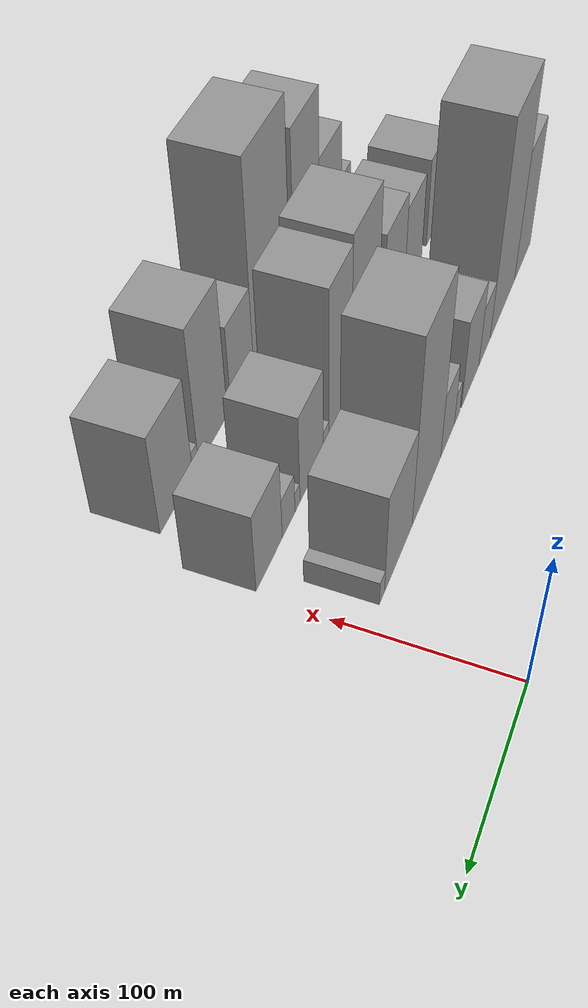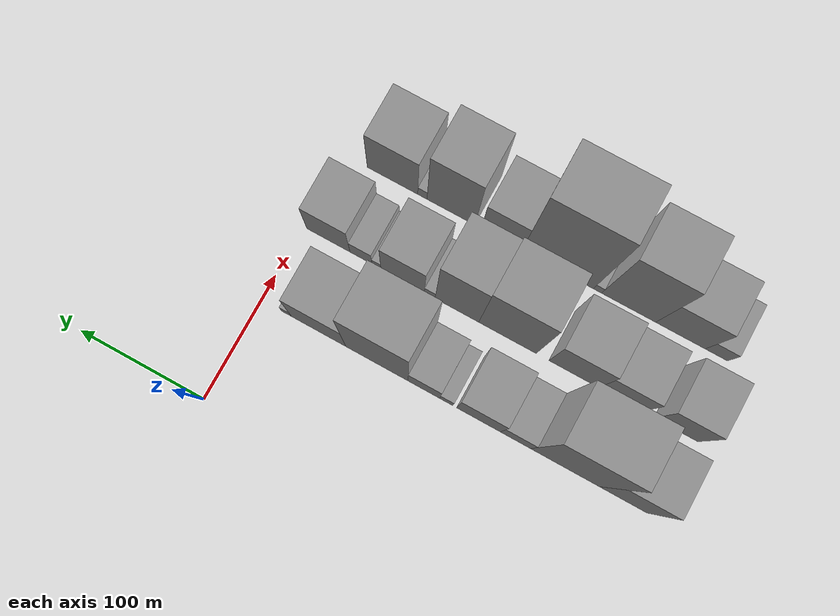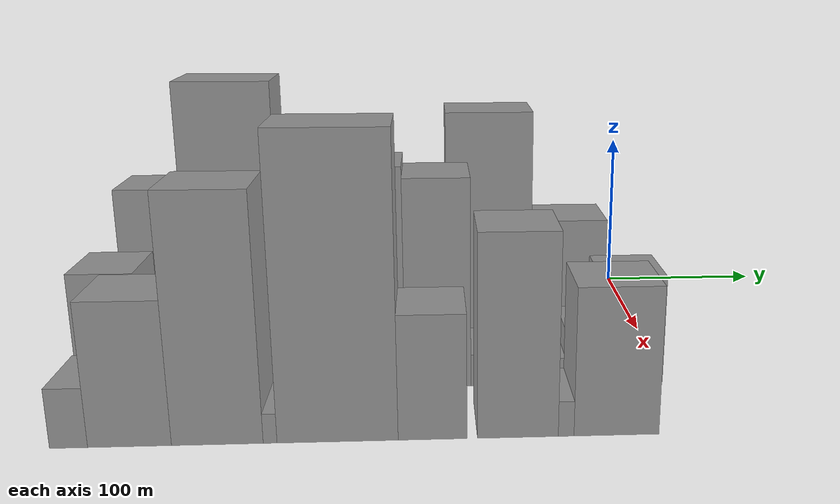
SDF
<sdf version="1.6">
 <world name="default">
  <model name="building_11">
   <static>1</static>
   <pose>100.0000 -285.9125 0 0.000000 0.000000 0.000000</pose>
   <link name="link">
    <pose>0 0 48.00 0 0 0</pose>
    <collision name="collision"><geometry><box><size>40.0000 36.7311 96.0000</size></box></geometry></collision>
    <visual name="visual">
     <cast_shadows>0</cast_shadows>
     <geometry><box><size>40.0000 36.7311 96.0000</size></box></geometry>
     <material>
      <script>
       <uri>model://grey_wall/materials/scripts</uri>
       <uri>model://grey_wall/materials/textures</uri>
       <name>vrc/grey_wall</name>
      </script>
     </material>
    </visual>
   </link>
  </model>
  <model name="building_12">
   <static>1</static>
   <pose>100.0000 -240.7987 0 0.000000 0.000000 0.000000</pose>
   <link name="link">
    <pose>0 0 78.00 0 0 0</pose>
    <collision name="collision"><geometry><box><size>40.0000 53.4963 156.0000</size></box></geometry></collision>
    <visual name="visual">
     <cast_shadows>0</cast_shadows>
     <geometry><box><size>40.0000 53.4963 156.0000</size></box></geometry>
     <material>
      <script>
       <uri>model://grey_wall/materials/scripts</uri>
       <uri>model://grey_wall/materials/textures</uri>
       <name>vrc/grey_wall</name>
      </script>
     </material>
    </visual>
   </link>
  </model>
  <model name="building_13">
   <static>1</static>
   <pose>100.0000 -202.2529 0 0.000000 0.000000 0.000000</pose>
   <link name="link">
    <pose>0 0 22.50 0 0 0</pose>
    <collision name="collision"><geometry><box><size>40.0000 23.5954 45.0000</size></box></geometry></collision>
    <visual name="visual">
     <cast_shadows>0</cast_shadows>
     <geometry><box><size>40.0000 23.5954 45.0000</size></box></geometry>
     <material>
      <script>
       <uri>model://grey_wall/materials/scripts</uri>
       <uri>model://grey_wall/materials/textures</uri>
       <name>vrc/grey_wall</name>
      </script>
     </material>
    </visual>
   </link>
  </model>
  <model name="building_14">
   <static>1</static>
   <pose>100.0000 -173.3818 0 0.000000 0.000000 0.000000</pose>
   <link name="link">
    <pose>0 0 33.00 0 0 0</pose>
    <collision name="collision"><geometry><box><size>40.0000 34.1467 66.0000</size></box></geometry></collision>
    <visual name="visual">
     <cast_shadows>0</cast_shadows>
     <geometry><box><size>40.0000 34.1467 66.0000</size></box></geometry>
     <material>
      <script>
       <uri>model://grey_wall/materials/scripts</uri>
       <uri>model://grey_wall/materials/textures</uri>
       <name>vrc/grey_wall</name>
      </script>
     </material>
    </visual>
   </link>
  </model>
  <model name="building_15">
   <static>1</static>
   <pose>100.0000 -148.1046 0 0.000000 0.000000 0.000000</pose>
   <link name="link">
    <pose>0 0 12.00 0 0 0</pose>
    <collision name="collision"><geometry><box><size>40.0000 10.4078 24.0000</size></box></geometry></collision>
    <visual name="visual">
     <cast_shadows>0</cast_shadows>
     <geometry><box><size>40.0000 10.4078 24.0000</size></box></geometry>
     <material>
      <script>
       <uri>model://grey_wall/materials/scripts</uri>
       <uri>model://grey_wall/materials/textures</uri>
       <name>vrc/grey_wall</name>
      </script>
     </material>
    </visual>
   </link>
  </model>
  <model name="building_16">
   <static>1</static>
   <pose>100.0000 -130.3756 0 0.000000 0.000000 0.000000</pose>
   <link name="link">
    <pose>0 0 24.00 0 0 0</pose>
    <collision name="collision"><geometry><box><size>40.0000 25.0502 48.0000</size></box></geometry></collision>
    <visual name="visual">
     <cast_shadows>0</cast_shadows>
     <geometry><box><size>40.0000 25.0502 48.0000</size></box></geometry>
     <material>
      <script>
       <uri>model://grey_wall/materials/scripts</uri>
       <uri>model://grey_wall/materials/textures</uri>
       <name>vrc/grey_wall</name>
      </script>
     </material>
    </visual>
   </link>
  </model>
  <model name="building_17">
   <static>1</static>
   <pose>100.0000 -93.1623 0 0.000000 0.000000 0.000000</pose>
   <link name="link">
    <pose>0 0 69.00 0 0 0</pose>
    <collision name="collision"><geometry><box><size>40.0000 49.3765 138.0000</size></box></geometry></collision>
    <visual name="visual">
     <cast_shadows>0</cast_shadows>
     <geometry><box><size>40.0000 49.3765 138.0000</size></box></geometry>
     <material>
      <script>
       <uri>model://grey_wall/materials/scripts</uri>
       <uri>model://grey_wall/materials/textures</uri>
       <name>vrc/grey_wall</name>
      </script>
     </material>
    </visual>
   </link>
  </model>
  <model name="building_18">
   <static>1</static>
   <pose>100.0000 -46.5483 0 0.000000 0.000000 0.000000</pose>
   <link name="link">
    <pose>0 0 37.50 0 0 0</pose>
    <collision name="collision"><geometry><box><size>40.0000 43.8515 75.0000</size></box></geometry></collision>
    <visual name="visual">
     <cast_shadows>0</cast_shadows>
     <geometry><box><size>40.0000 43.8515 75.0000</size></box></geometry>
     <material>
      <script>
       <uri>model://grey_wall/materials/scripts</uri>
       <uri>model://grey_wall/materials/textures</uri>
       <name>vrc/grey_wall</name>
      </script>
     </material>
    </visual>
   </link>
  </model>
  <model name="building_19">
   <static>1</static>
   <pose>100.0000 -20.6367 0 0.000000 0.000000 0.000000</pose>
   <link name="link">
    <pose>0 0 9.00 0 0 0</pose>
    <collision name="collision"><geometry><box><size>40.0000 7.9717 18.0000</size></box></geometry></collision>
    <visual name="visual">
     <cast_shadows>0</cast_shadows>
     <geometry><box><size>40.0000 7.9717 18.0000</size></box></geometry>
     <material>
      <script>
       <uri>model://grey_wall/materials/scripts</uri>
       <uri>model://grey_wall/materials/textures</uri>
       <name>vrc/grey_wall</name>
      </script>
     </material>
    </visual>
   </link>
  </model>
  <model name="building_45">
   <static>1</static>
   <pose>160.0000 -296.0275 0 0.000000 0.000000 0.000000</pose>
   <link name="link">
    <pose>0 0 33.00 0 0 0</pose>
    <collision name="collision"><geometry><box><size>40.0000 33.8556 66.0000</size></box></geometry></collision>
    <visual name="visual">
     <cast_shadows>0</cast_shadows>
     <geometry><box><size>40.0000 33.8556 66.0000</size></box></geometry>
     <material>
      <script>
       <uri>model://grey_wall/materials/scripts</uri>
       <uri>model://grey_wall/materials/textures</uri>
       <name>vrc/grey_wall</name>
      </script>
     </material>
    </visual>
   </link>
  </model>
  <model name="building_46">
   <static>1</static>
   <pose>160.0000 -252.9372 0 0.000000 0.000000 0.000000</pose>
   <link name="link">
    <pose>0 0 31.50 0 0 0</pose>
    <collision name="collision"><geometry><box><size>40.0000 34.3250 63.0000</size></box></geometry></collision>
    <visual name="visual">
     <cast_shadows>0</cast_shadows>
     <geometry><box><size>40.0000 34.3250 63.0000</size></box></geometry>
     <material>
      <script>
       <uri>model://grey_wall/materials/scripts</uri>
       <uri>model://grey_wall/materials/textures</uri>
       <name>vrc/grey_wall</name>
      </script>
     </material>
    </visual>
   </link>
  </model>
  <model name="building_47">
   <static>1</static>
   <pose>160.0000 -216.3550 0 0.000000 0.000000 0.000000</pose>
   <link name="link">
    <pose>0 0 37.50 0 0 0</pose>
    <collision name="collision"><geometry><box><size>40.0000 38.8393 75.0000</size></box></geometry></collision>
    <visual name="visual">
     <cast_shadows>0</cast_shadows>
     <geometry><box><size>40.0000 38.8393 75.0000</size></box></geometry>
     <material>
      <script>
       <uri>model://grey_wall/materials/scripts</uri>
       <uri>model://grey_wall/materials/textures</uri>
       <name>vrc/grey_wall</name>
      </script>
     </material>
    </visual>
   </link>
  </model>
  <model name="building_48">
   <static>1</static>
   <pose>160.0000 -164.1275 0 0.000000 0.000000 0.000000</pose>
   <link name="link">
    <pose>0 0 60.00 0 0 0</pose>
    <collision name="collision"><geometry><box><size>40.0000 45.6158 120.0000</size></box></geometry></collision>
    <visual name="visual">
     <cast_shadows>0</cast_shadows>
     <geometry><box><size>40.0000 45.6158 120.0000</size></box></geometry>
     <material>
      <script>
       <uri>model://grey_wall/materials/scripts</uri>
       <uri>model://grey_wall/materials/textures</uri>
       <name>vrc/grey_wall</name>
      </script>
     </material>
    </visual>
   </link>
  </model>
  <model name="building_49">
   <static>1</static>
   <pose>160.0000 -123.8702 0 0.000000 0.000000 0.000000</pose>
   <link name="link">
    <pose>0 0 57.00 0 0 0</pose>
    <collision name="collision"><geometry><box><size>40.0000 34.8988 114.0000</size></box></geometry></collision>
    <visual name="visual">
     <cast_shadows>0</cast_shadows>
     <geometry><box><size>40.0000 34.8988 114.0000</size></box></geometry>
     <material>
      <script>
       <uri>model://grey_wall/materials/scripts</uri>
       <uri>model://grey_wall/materials/textures</uri>
       <name>vrc/grey_wall</name>
      </script>
     </material>
    </visual>
   </link>
  </model>
  <model name="building_50">
   <static>1</static>
   <pose>160.0000 -102.0701 0 0.000000 0.000000 0.000000</pose>
   <link name="link">
    <pose>0 0 9.00 0 0 0</pose>
    <collision name="collision"><geometry><box><size>40.0000 8.7015 18.0000</size></box></geometry></collision>
    <visual name="visual">
     <cast_shadows>0</cast_shadows>
     <geometry><box><size>40.0000 8.7015 18.0000</size></box></geometry>
     <material>
      <script>
       <uri>model://grey_wall/materials/scripts</uri>
       <uri>model://grey_wall/materials/textures</uri>
       <name>vrc/grey_wall</name>
      </script>
     </material>
    </visual>
   </link>
  </model>
  <model name="building_51">
   <static>1</static>
   <pose>160.0000 -80.2887 0 0.000000 0.000000 0.000000</pose>
   <link name="link">
    <pose>0 0 33.00 0 0 0</pose>
    <collision name="collision"><geometry><box><size>40.0000 34.8612 66.0000</size></box></geometry></collision>
    <visual name="visual">
     <cast_shadows>0</cast_shadows>
     <geometry><box><size>40.0000 34.8612 66.0000</size></box></geometry>
     <material>
      <script>
       <uri>model://grey_wall/materials/scripts</uri>
       <uri>model://grey_wall/materials/textures</uri>
       <name>vrc/grey_wall</name>
      </script>
     </material>
    </visual>
   </link>
  </model>
  <model name="building_52">
   <static>1</static>
   <pose>160.0000 -59.2380 0 0.000000 0.000000 0.000000</pose>
   <link name="link">
    <pose>0 0 7.50 0 0 0</pose>
    <collision name="collision"><geometry><box><size>40.0000 7.2402 15.0000</size></box></geometry></collision>
    <visual name="visual">
     <cast_shadows>0</cast_shadows>
     <geometry><box><size>40.0000 7.2402 15.0000</size></box></geometry>
     <material>
      <script>
       <uri>model://grey_wall/materials/scripts</uri>
       <uri>model://grey_wall/materials/textures</uri>
       <name>vrc/grey_wall</name>
      </script>
     </material>
    </visual>
   </link>
  </model>
  <model name="building_53">
   <static>1</static>
   <pose>160.0000 -46.7216 0 0.000000 0.000000 0.000000</pose>
   <link name="link">
    <pose>0 0 15.00 0 0 0</pose>
    <collision name="collision"><geometry><box><size>40.0000 17.7927 30.0000</size></box></geometry></collision>
    <visual name="visual">
     <cast_shadows>0</cast_shadows>
     <geometry><box><size>40.0000 17.7927 30.0000</size></box></geometry>
     <material>
      <script>
       <uri>model://grey_wall/materials/scripts</uri>
       <uri>model://grey_wall/materials/textures</uri>
       <name>vrc/grey_wall</name>
      </script>
     </material>
    </visual>
   </link>
  </model>
  <model name="building_54">
   <static>1</static>
   <pose>160.0000 -20.2599 0 0.000000 0.000000 0.000000</pose>
   <link name="link">
    <pose>0 0 30.00 0 0 0</pose>
    <collision name="collision"><geometry><box><size>40.0000 35.1307 60.0000</size></box></geometry></collision>
    <visual name="visual">
     <cast_shadows>0</cast_shadows>
     <geometry><box><size>40.0000 35.1307 60.0000</size></box></geometry>
     <material>
      <script>
       <uri>model://grey_wall/materials/scripts</uri>
       <uri>model://grey_wall/materials/textures</uri>
       <name>vrc/grey_wall</name>
      </script>
     </material>
    </visual>
   </link>
  </model>
  <model name="building_83">
   <static>1</static>
   <pose>220.0000 -297.4106 0 0.000000 0.000000 0.000000</pose>
   <link name="link">
    <pose>0 0 15.00 0 0 0</pose>
    <collision name="collision"><geometry><box><size>40.0000 17.5124 30.0000</size></box></geometry></collision>
    <visual name="visual">
     <cast_shadows>0</cast_shadows>
     <geometry><box><size>40.0000 17.5124 30.0000</size></box></geometry>
     <material>
      <script>
       <uri>model://grey_wall/materials/scripts</uri>
       <uri>model://grey_wall/materials/textures</uri>
       <name>vrc/grey_wall</name>
      </script>
     </material>
    </visual>
   </link>
  </model>
  <model name="building_84">
   <static>1</static>
   <pose>220.0000 -269.2744 0 0.000000 0.000000 0.000000</pose>
   <link name="link">
    <pose>0 0 36.00 0 0 0</pose>
    <collision name="collision"><geometry><box><size>40.0000 38.7601 72.0000</size></box></geometry></collision>
    <visual name="visual">
     <cast_shadows>0</cast_shadows>
     <geometry><box><size>40.0000 38.7601 72.0000</size></box></geometry>
     <material>
      <script>
       <uri>model://grey_wall/materials/scripts</uri>
       <uri>model://grey_wall/materials/textures</uri>
       <name>vrc/grey_wall</name>
      </script>
     </material>
    </visual>
   </link>
  </model>
  <model name="building_85">
   <static>1</static>
   <pose>220.0000 -228.5268 0 0.000000 0.000000 0.000000</pose>
   <link name="link">
    <pose>0 0 61.50 0 0 0</pose>
    <collision name="collision"><geometry><box><size>40.0000 42.7351 123.0000</size></box></geometry></collision>
    <visual name="visual">
     <cast_shadows>0</cast_shadows>
     <geometry><box><size>40.0000 42.7351 123.0000</size></box></geometry>
     <material>
      <script>
       <uri>model://grey_wall/materials/scripts</uri>
       <uri>model://grey_wall/materials/textures</uri>
       <name>vrc/grey_wall</name>
      </script>
     </material>
    </visual>
   </link>
  </model>
  <model name="building_86">
   <static>1</static>
   <pose>220.0000 -203.9222 0 0.000000 0.000000 0.000000</pose>
   <link name="link">
    <pose>0 0 7.50 0 0 0</pose>
    <collision name="collision"><geometry><box><size>40.0000 6.4741 15.0000</size></box></geometry></collision>
    <visual name="visual">
     <cast_shadows>0</cast_shadows>
     <geometry><box><size>40.0000 6.4741 15.0000</size></box></geometry>
     <material>
      <script>
       <uri>model://grey_wall/materials/scripts</uri>
       <uri>model://grey_wall/materials/textures</uri>
       <name>vrc/grey_wall</name>
      </script>
     </material>
    </visual>
   </link>
  </model>
  <model name="building_87">
   <static>1</static>
   <pose>220.0000 -172.1167 0 0.000000 0.000000 0.000000</pose>
   <link name="link">
    <pose>0 0 75.00 0 0 0</pose>
    <collision name="collision"><geometry><box><size>40.0000 57.1369 150.0000</size></box></geometry></collision>
    <visual name="visual">
     <cast_shadows>0</cast_shadows>
     <geometry><box><size>40.0000 57.1369 150.0000</size></box></geometry>
     <material>
      <script>
       <uri>model://grey_wall/materials/scripts</uri>
       <uri>model://grey_wall/materials/textures</uri>
       <name>vrc/grey_wall</name>
      </script>
     </material>
    </visual>
   </link>
  </model>
  <model name="building_88">
   <static>1</static>
   <pose>220.0000 -127.1598 0 0.000000 0.000000 0.000000</pose>
   <link name="link">
    <pose>0 0 31.50 0 0 0</pose>
    <collision name="collision"><geometry><box><size>40.0000 32.7769 63.0000</size></box></geometry></collision>
    <visual name="visual">
     <cast_shadows>0</cast_shadows>
     <geometry><box><size>40.0000 32.7769 63.0000</size></box></geometry>
     <material>
      <script>
       <uri>model://grey_wall/materials/scripts</uri>
       <uri>model://grey_wall/materials/textures</uri>
       <name>vrc/grey_wall</name>
      </script>
     </material>
    </visual>
   </link>
  </model>
  <model name="building_89">
   <static>1</static>
   <pose>220.0000 -86.3846 0 0.000000 0.000000 0.000000</pose>
   <link name="link">
    <pose>0 0 51.00 0 0 0</pose>
    <collision name="collision"><geometry><box><size>40.0000 38.7735 102.0000</size></box></geometry></collision>
    <visual name="visual">
     <cast_shadows>0</cast_shadows>
     <geometry><box><size>40.0000 38.7735 102.0000</size></box></geometry>
     <material>
      <script>
       <uri>model://grey_wall/materials/scripts</uri>
       <uri>model://grey_wall/materials/textures</uri>
       <name>vrc/grey_wall</name>
      </script>
     </material>
    </visual>
   </link>
  </model>
  <model name="building_90">
   <static>1</static>
   <pose>220.0000 -63.2119 0 0.000000 0.000000 0.000000</pose>
   <link name="link">
    <pose>0 0 9.00 0 0 0</pose>
    <collision name="collision"><geometry><box><size>40.0000 7.5721 18.0000</size></box></geometry></collision>
    <visual name="visual">
     <cast_shadows>0</cast_shadows>
     <geometry><box><size>40.0000 7.5721 18.0000</size></box></geometry>
     <material>
      <script>
       <uri>model://grey_wall/materials/scripts</uri>
       <uri>model://grey_wall/materials/textures</uri>
       <name>vrc/grey_wall</name>
      </script>
     </material>
    </visual>
   </link>
  </model>
  <model name="building_91">
   <static>1</static>
   <pose>220.0000 -38.8473 0 0.000000 0.000000 0.000000</pose>
   <link name="link">
    <pose>0 0 37.50 0 0 0</pose>
    <collision name="collision"><geometry><box><size>40.0000 41.1570 75.0000</size></box></geometry></collision>
    <visual name="visual">
     <cast_shadows>0</cast_shadows>
     <geometry><box><size>40.0000 41.1570 75.0000</size></box></geometry>
     <material>
      <script>
       <uri>model://grey_wall/materials/scripts</uri>
       <uri>model://grey_wall/materials/textures</uri>
       <name>vrc/grey_wall</name>
      </script>
     </material>
    </visual>
   </link>
  </model>
 </world>
</sdf>
